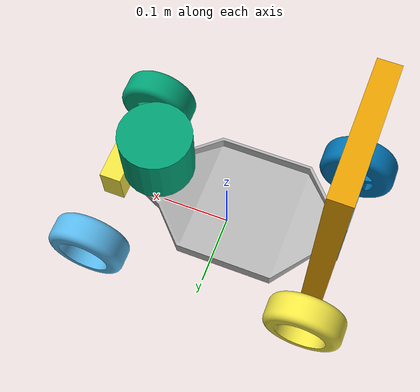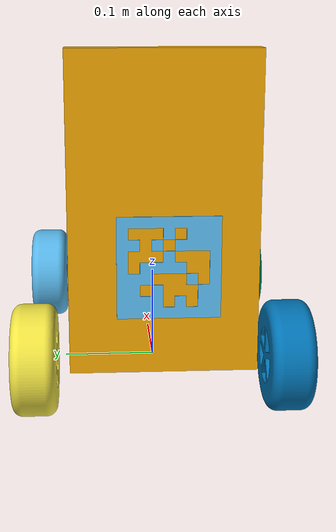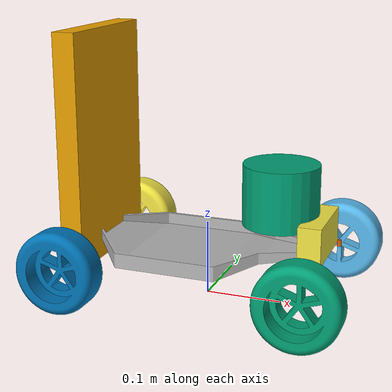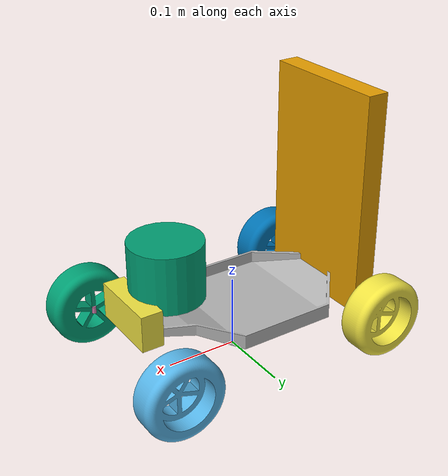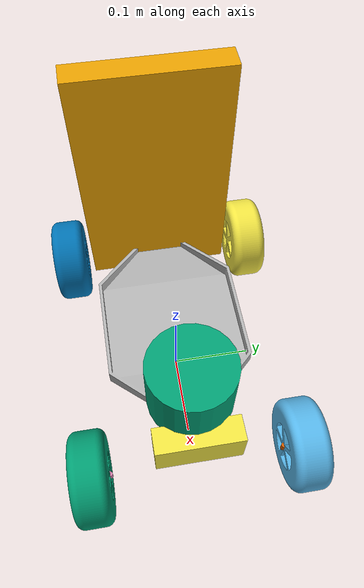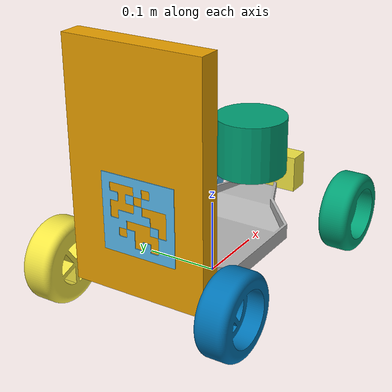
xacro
<?xml version='1.0'?>
<robot name="$(arg robot_name)" xmlns:xacro="http://www.ros.org/wiki/xacro">

    <xacro:arg name="robot_name" default="f1tenth"/>

    <xacro:arg name="enable_camera" default="false" />

    <!-- Contestants and stuff -->
    <xacro:include filename="$(find f1tenth_description)/urdf/const.xacro" />
    <xacro:include filename="$(find f1tenth_description)/urdf/macro.xacro" />
    <xacro:include filename="$(find f1tenth_description)/gazebo/lidar.gazebo.xacro" />
    <xacro:include filename="$(find f1tenth_description)/gazebo/imu.gazebo.xacro" />
    <xacro:if value="$(arg enable_camera)">
        <xacro:include filename="$(find f1tenth_description)/gazebo/camera.gazebo.xacro" />
    </xacro:if>

    <!-- links and joints -->
    <xacro:include filename="$(find f1tenth_description)/urdf/links.xacro" />
    <xacro:include filename="$(find f1tenth_description)/urdf/joints.xacro" />

    <!-- Gazebo stuff -->
    <xacro:include filename="$(find f1tenth_description)/gazebo/ackermann.gazebo.xacro" />
    <xacro:include filename="$(find f1tenth_description)/gazebo/odometry.gazebo.xacro" />
    <xacro:include filename="$(find f1tenth_description)/gazebo/jsp.gazebo.xacro" />
    <xacro:include filename="$(find f1tenth_description)/gazebo/pose.gazebo.xacro" />

</robot>

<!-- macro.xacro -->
<robot xmlns:xacro="http://www.ros.org/wiki/xacro">
    <!-- link to full docs: https://github.com/UOA-FSAE/f1tenth/wiki/Description -->

    <xacro:macro name="inertial_sphere" params="mass radius *origin">
        <inertial>
            <xacro:insert_block name="origin"/>
            <mass value="${mass}" />
            <inertia ixx="${(2/5) * mass * (radius*radius)}" ixy="0.0" ixz="0.0"
                    iyy="${(2/5) * mass * (radius*radius)}" iyz="0.0"
                    izz="${(2/5) * mass * (radius*radius)}" />
        </inertial>
    </xacro:macro>

    <xacro:macro name="inertial_box" params="mass x y z *origin">
        <inertial>
            <xacro:insert_block name="origin"/>
            <mass value="${mass}" />
            <inertia ixx="${(1/12) * mass * (y*y+z*z)}" ixy="0.0" ixz="0.0"
                    iyy="${(1/12) * mass * (x*x+z*z)}" iyz="0.0"
                    izz="${(1/12) * mass * (x*x+y*y)}" />
        </inertial>
    </xacro:macro>

    <xacro:macro name="inertial_cylinder" params="mass length radius *origin">
        <inertial>
            <xacro:insert_block name="origin"/>
            <mass value="${mass}" />
            <inertia ixx="${(1/12) * mass * (3*radius*radius + length*length)}" ixy="0.0" ixz="0.0"
                    iyy="${(1/12) * mass * (3*radius*radius + length*length)}" iyz="0.0"
                    izz="${(1/2) * mass * (radius*radius)}" />
        </inertial>
    </xacro:macro>

    <xacro:macro name="cylinder_link" params="name mesh_file radius width mass *origin">
        <link name="${name}">

            <visual>
                <geometry>
                    <mesh filename="${mesh_file}"
                        scale="0.001 0.001 0.001"/>
                </geometry>

                <xacro:insert_block name="origin" />
            </visual>

            <collision>
                <geometry>
                    <cylinder length="${width}" radius="${radius}" />
                </geometry>

                <xacro:insert_block name="origin" />
            </collision>

            <xacro:inertial_cylinder mass="${mass}" length="${width}" radius="${radius}">
                <xacro:insert_block name="origin" />
            </xacro:inertial_cylinder>
        </link>
    </xacro:macro>

    <xacro:macro name="cylinder_link_nomesh" params="name radius width mass *origin">
        <link name="${name}">

            <visual>
                <geometry>
                    <cylinder length="${width}" radius="${radius}" />
                </geometry>

                <xacro:insert_block name="origin" />
            </visual>

            <collision>
                <geometry>
                    <cylinder length="${width}" radius="${radius}" />
                </geometry>

                <xacro:insert_block name="origin" />
            </collision>

            <xacro:inertial_cylinder mass="${mass}" length="${width}" radius="${radius}">
                <xacro:insert_block name="origin" />
            </xacro:inertial_cylinder>
        </link>
    </xacro:macro>

    <xacro:macro name="box_link" params="name mesh_file mass x y z *origin" >
        <link name="${name}">
            <visual>
                <geometry>
                    <mesh filename="${mesh_file}"
                        scale="0.001 0.001 0.001"/>
                </geometry>

                <xacro:insert_block name="origin" />
            </visual>

            <xacro:inertial_box mass="${mass}" x="${x}" y="${y}" z="${z}">
                <xacro:insert_block name="origin" />
            </xacro:inertial_box>
        </link>
    </xacro:macro>

  <xacro:macro name="box_link_nomesh" params="name x y z mass *origin">
        <link name="${name}">

            <visual>
                <geometry>
                    <box size='${x} ${y} ${z}' />
                </geometry>

                <xacro:insert_block name="origin" />
            </visual>

            <collision>
                <geometry>
                    <box size='${x} ${y} ${z}' />
                </geometry>

                <xacro:insert_block name="origin" />
            </collision>

            <xacro:inertial_box mass="${mass}" x="${x}" y="${y}" z="${z}">
                <xacro:insert_block name="origin" />
            </xacro:inertial_box>
        </link>
    </xacro:macro>
</robot>

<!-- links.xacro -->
<robot xmlns:xacro="http://www.ros.org/wiki/xacro">

    <link name="base_link">
    </link>

    <!-- Wheels -->
    <xacro:cylinder_link name="front_left_wheel" mesh_file="package://f1tenth_description/meshes/wheel.stl"
                 radius="0.055" width="0.0445" mass="0.09">
        <origin xyz="0 0 0" rpy="${-pi/2} 0 0"/>
    </xacro:cylinder_link>

    <xacro:cylinder_link name="front_right_wheel" mesh_file="package://f1tenth_description/meshes/wheel.stl"
                 radius="0.055" width="0.0445" mass="0.09">
        <origin xyz="0 0 0" rpy="${pi/2} 0 0"/>
    </xacro:cylinder_link>

    <xacro:cylinder_link name="rear_left_wheel" mesh_file="package://f1tenth_description/meshes/wheel.stl"
                 radius="0.055" width="0.0445" mass="0.09">
        <origin xyz="0 0 0" rpy="${-pi/2} 0 0"/>
    </xacro:cylinder_link>

    <xacro:cylinder_link name="rear_right_wheel" mesh_file="package://f1tenth_description/meshes/wheel.stl"
                 radius="0.055" width="0.0445" mass="0.09">
        <origin xyz="0 0 0" rpy="${pi/2} 0 0"/>
    </xacro:cylinder_link>

    <!-- Drive train -->
    <xacro:cylinder_link_nomesh name="front_left_wheel_steering_link"
                    radius="0.003" width="0.01" mass="0.05">
        <origin xyz="0 0 0" rpy="0 0 0"/>
    </xacro:cylinder_link_nomesh>

    <xacro:cylinder_link_nomesh name="front_right_wheel_steering_link"
                    radius="0.003" width="0.01" mass="0.05">
        <origin xyz="0 0 0" rpy="0 0 0"/>
    </xacro:cylinder_link_nomesh>

    <!-- Chassis -->
    <xacro:box_link name="lower_chassis" mesh_file="package://f1tenth_description/meshes/chassis_base.stl"
                    x="0.03" y="0.183" z="0.31 " mass="0.08">
        <origin xyz="0 0 0" rpy="0 0 ${-pi/2}"/>
    </xacro:box_link>

    <xacro:box_link_nomesh name='box_visual' x="0.03 " y="0.183" z="0.31" mass="0.001">
        <origin xyz="0 -0.0915 0" rpy="0 0 0"/>
    </xacro:box_link_nomesh >

    <xacro:box_link name="aruco_visual" mesh_file="package://f1tenth_description/meshes/aruco.stl"
                    x="0.03" y="0.183" z="0.31 " mass="0.08">
        <origin xyz="0 0 0" rpy="0 0 0"/>
    </xacro:box_link>

    <!-- Sensor links -->
    <xacro:cylinder_link_nomesh name="hokuyo_10lx_lidar_link"
                    radius="0.05" width="0.08" mass="0.05">
      <origin xyz="0 0 0" rpy="0 0 0"/>
    </xacro:cylinder_link_nomesh>

    <xacro:box_link_nomesh name="camera_link" x="0.03" y="0.1" z="0.05" mass="0.08">
        <origin xyz="0 0 0" rpy="0 0 0"/>
    </xacro:box_link_nomesh>

    <link name="imu_sensor_link">
        <gravity>false</gravity>
        <origin xyz="0 0 0" rpy="0 0 0"/>
    </link>

</robot>

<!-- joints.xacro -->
<robot xmlns:xacro="http://www.ros.org/wiki/xacro">

    <!-- Steering joints -->
    <joint name="front_left_wheel_steering_joint" type="revolute">
        <child link="front_left_wheel_steering_link" />
        <parent link="base_link" />

        <axis xyz="0 0 1" />
        <limit lower="-0.7" upper="+0.7"
               velocity="3.66" effort="25" />
        <origin xyz="0.1575 0.1025 0.055" rpy="0 0 0"/>
    </joint>

    <joint name="front_right_wheel_steering_joint" type="revolute">
        <child link="front_right_wheel_steering_link" />
        <parent link="base_link" />

        <axis xyz="0 0 1" />
        <limit lower="-0.7" upper="+0.7"
               velocity="3.66" effort="25" />
        <origin xyz="0.1575 -0.1025 0.055" rpy="0 0 0"/>
    </joint>

    <!-- Drive joints -->
    <joint name="front_left_wheel_joint" type="continuous">
        <child link="front_left_wheel" />
        <parent link="front_left_wheel_steering_link" />

        <axis xyz="0 1 0" />
    </joint>

    <joint name="front_right_wheel_joint" type="continuous">
        <child link="front_right_wheel" />
        <parent link="front_right_wheel_steering_link" />

        <axis xyz="0 1 0" />
    </joint>

    <joint name="rear_left_wheel_joint" type="continuous">
        <child link="rear_left_wheel" />
        <parent link="base_link" />

        <axis xyz="0 1 0" />
        <origin xyz="-0.1575 0.1025 0.055" rpy="0 0 0"/>
    </joint>

    <joint name="rear_right_wheel_joint" type="continuous">
        <child link="rear_right_wheel" />
        <parent link="base_link" />

        <axis xyz="0 1 0" />
        <origin xyz="-0.1575 -0.1025 0.055" rpy="0 0 0"/>
    </joint>

    <!-- Chassis Joints-->
    <joint name="base_link_to_box" type="fixed">
        <child link="box_visual" />
        <parent link="base_link" />

        <origin xyz="-0.1554 0.09 0.2" rpy="0 0 0"/>
    </joint>

    <joint name="aruco_to_box" type="fixed">
        <child link="aruco_visual" />
        <parent link="box_visual" />

        <origin xyz="-0.016 -0.146 0" rpy="0 ${pi/2} 0"/>
    </joint>

    <joint name="base_link_to_lower_chassis" type="fixed">
        <child link="lower_chassis" />
        <parent link="base_link" />

        <origin xyz="-0.155 0.09 0.055" rpy="0 0 0"/>
    </joint>

    <!-- Sensor Joints -->
    <joint name="hokuyo_10lx_lidar_joint" type="fixed">
        <child link="hokuyo_10lx_lidar_link" />
        <parent link="base_link" />

        <origin xyz="0.1 0 0.15" rpy="0 0 0"/>
    </joint>

    <joint name="camera_joint" type="fixed">
        <child link="camera_link" />
        <parent link="base_link" />

        <origin xyz="0.15 0 0.1" rpy="0 0 0"/>
    </joint>

    <joint name="imu_sensor_joint" type="fixed">
        <child link="imu_sensor_link"/>
        <parent link="base_link"/>
        <origin xyz="0 0 0" rpy="0 0 0"/>
    </joint>

</robot>
